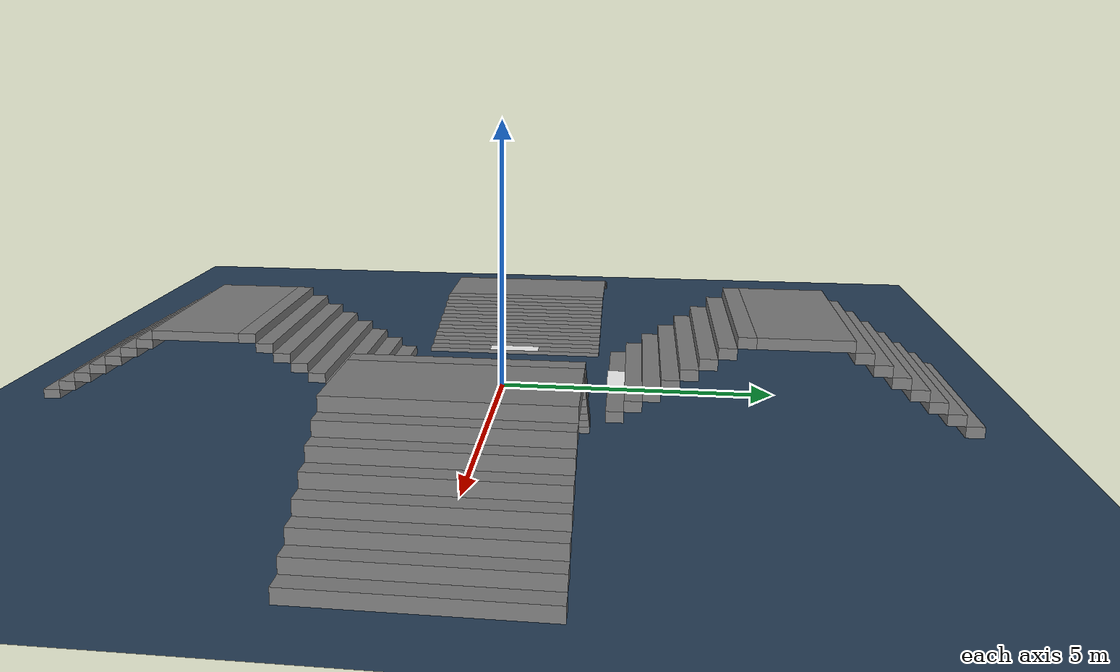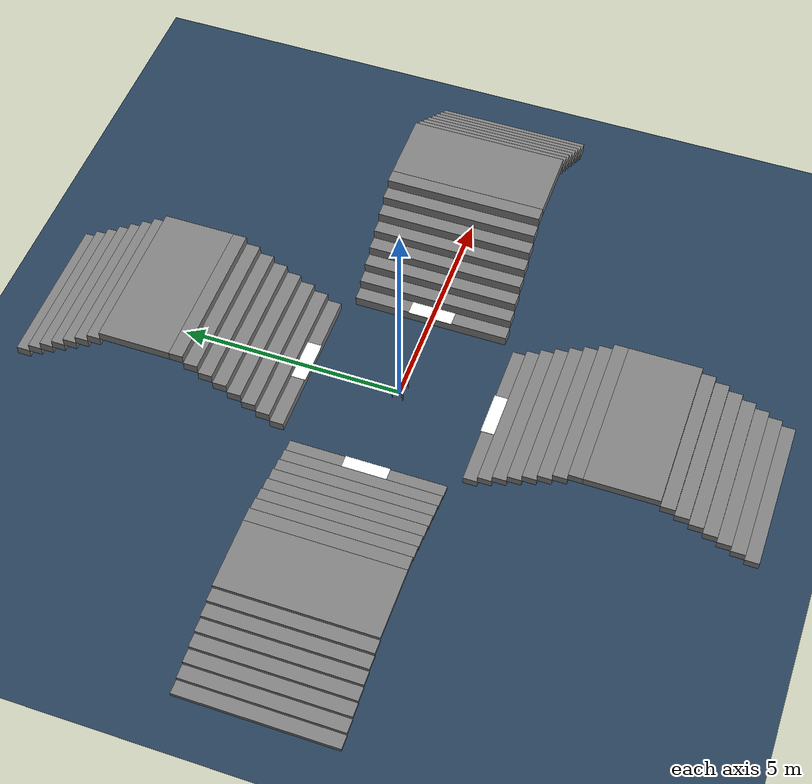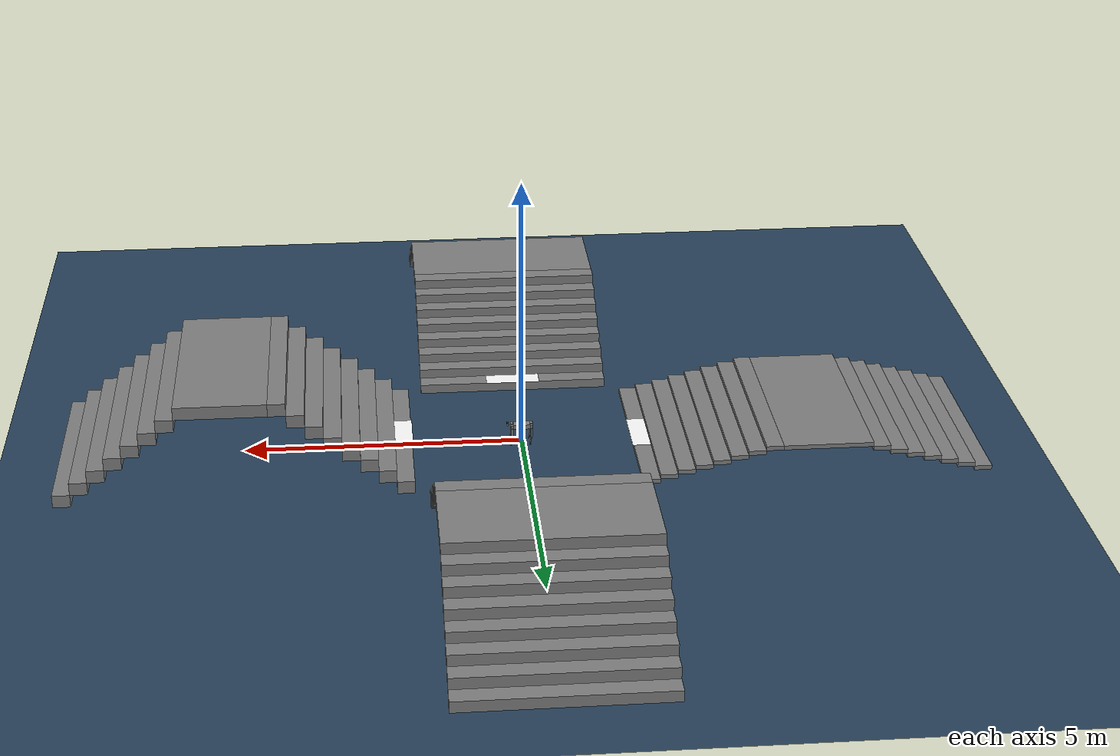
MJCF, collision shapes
<mujoco model="cross_stairs_1_4_7_10">
  <include file="dog_502.xml"/>
  <!-- Terrain: Cross Stairs Arch, Levels: 1,4,7,10. Cross Layout: Center Gap 2.0m. Arch step height: 0.0800 Arch step height: 0.2000 Arch step height: 0.2300 Arch step height: 0.1700 -->
  <statistic center="0 0 0.1" extent="0.8" />
  <visual>
    <headlight diffuse="0.6 0.6 0.6" ambient="0.3 0.3 0.3" specular="0 0 0" />
    <rgba haze="0.15 0.25 0.35 1" />
    <global azimuth="-130" elevation="-20" />
  </visual>
  <asset>
    <texture type="skybox" builtin="gradient" rgb1="0.3 0.5 0.7" rgb2="0 0 0" width="512" height="3072" />
    <texture type="2d" name="groundplane" builtin="checker" mark="edge" rgb1="0.2 0.3 0.4" rgb2="0.1 0.2 0.3" markrgb="0.8 0.8 0.8" width="300" height="300" />
    <material name="groundplane" texture="groundplane" texuniform="true" texrepeat="5 5" reflectance="0.0" />
    <texture name="tex_label_1" type="2d" file="./imgs/label_1.png" />
    <material name="mat_label_1" texture="tex_label_1" specular="0" shininess="0" emission="1" texrepeat="1 1" rgba="1 1 1 1" />
    <texture name="tex_label_7" type="2d" file="./imgs/label_7.png" />
    <material name="mat_label_7" texture="tex_label_7" specular="0" shininess="0" emission="1" texrepeat="1 1" rgba="1 1 1 1" />
    <texture name="tex_label_10" type="2d" file="./imgs/label_10.png" />
    <material name="mat_label_10" texture="tex_label_10" specular="0" shininess="0" emission="1" texrepeat="1 1" rgba="1 1 1 1" />
    <texture name="tex_label_4" type="2d" file="./imgs/label_4.png" />
    <material name="mat_label_4" texture="tex_label_4" specular="0" shininess="0" emission="1" texrepeat="1 1" rgba="1 1 1 1" />
  </asset>
  <worldbody>
    <light pos="0 0 1.5" dir="0 0 -1" directional="true" />
    <geom name="floor" size="0 0 0.05" type="plane" material="groundplane" />
    <geom pos="-2.155 1.8982025386783976e-17 0.04" type="box" size="0.155 1.75 0.04" quat="6.123233995736766e-17 0.0 0.0 1.0" />
    <geom pos="-2.465 5.694607616035192e-17 0.12" type="box" size="0.155 1.75 0.04" quat="6.123233995736766e-17 0.0 0.0 1.0" />
    <geom pos="-2.775 9.491012693391986e-17 0.2" type="box" size="0.155 1.75 0.04" quat="6.123233995736766e-17 0.0 0.0 1.0" />
    <geom pos="-3.085 1.328741777074878e-16 0.28" type="box" size="0.155 1.75 0.04" quat="6.123233995736766e-17 0.0 0.0 1.0" />
    <geom pos="-3.395 1.7083822848105578e-16 0.36000000000000004" type="box" size="0.155 1.75 0.04" quat="6.123233995736766e-17 0.0 0.0 1.0" />
    <geom pos="-3.705 2.0880227925462374e-16 0.44000000000000006" type="box" size="0.155 1.75 0.04" quat="6.123233995736766e-17 0.0 0.0 1.0" />
    <geom pos="-4.015000000000001 2.467663300281917e-16 0.52" type="box" size="0.155 1.75 0.04" quat="6.123233995736766e-17 0.0 0.0 1.0" />
    <geom pos="-4.325 2.8473038080175964e-16 0.6" type="box" size="0.155 1.75 0.04" quat="6.123233995736766e-17 0.0 0.0 1.0" />
    <geom pos="-5.28 4.016841501203319e-16 0.6" type="box" size="0.8 1.75 0.04" quat="6.123233995736766e-17 0.0 0.0 1.0" />
    <geom pos="-6.235 5.186379194389041e-16 0.52" type="box" size="0.155 1.75 0.04" quat="6.123233995736766e-17 0.0 0.0 1.0" />
    <geom pos="-6.545 5.56601970212472e-16 0.44" type="box" size="0.155 1.75 0.04" quat="6.123233995736766e-17 0.0 0.0 1.0" />
    <geom pos="-6.8549999999999995 5.945660209860399e-16 0.36" type="box" size="0.155 1.75 0.04" quat="6.123233995736766e-17 0.0 0.0 1.0" />
    <geom pos="-7.164999999999999 6.325300717596078e-16 0.27999999999999997" type="box" size="0.155 1.75 0.04" quat="6.123233995736766e-17 0.0 0.0 1.0" />
    <geom pos="-7.474999999999999 6.704941225331758e-16 0.19999999999999996" type="box" size="0.155 1.75 0.04" quat="6.123233995736766e-17 0.0 0.0 1.0" />
    <geom pos="-7.784999999999998 7.084581733067436e-16 0.11999999999999995" type="box" size="0.155 1.75 0.04" quat="6.123233995736766e-17 0.0 0.0 1.0" />
    <geom pos="-8.094999999999999 7.464222240803115e-16 0.03999999999999995" type="box" size="0.155 1.75 0.04" quat="6.123233995736766e-17 0.0 0.0 1.0" />
    <geom pos="-2.155 1.8982025386783976e-17 0.082" type="box" size="0.5 0.17532467532467533 0.0001" quat="0.7071067811865476 0.0 0.0 0.7071067811865475" contype="0" conaffinity="0" group="1" material="mat_label_1" rgba="1 1 1 1" />
    <geom pos="9.491012693391988e-18 2.155 0.1" type="box" size="0.155 1.75 0.1" quat="0.7071067811865476 0.0 0.0 0.7071067811865475" />
    <geom pos="2.847303808017596e-17 2.465 0.30000000000000004" type="box" size="0.155 1.75 0.1" quat="0.7071067811865476 0.0 0.0 0.7071067811865475" />
    <geom pos="4.745506346695993e-17 2.775 0.5" type="box" size="0.155 1.75 0.1" quat="0.7071067811865476 0.0 0.0 0.7071067811865475" />
    <geom pos="6.64370888537439e-17 3.085 0.7" type="box" size="0.155 1.75 0.1" quat="0.7071067811865476 0.0 0.0 0.7071067811865475" />
    <geom pos="8.541911424052789e-17 3.395 0.8999999999999999" type="box" size="0.155 1.75 0.1" quat="0.7071067811865476 0.0 0.0 0.7071067811865475" />
    <geom pos="1.0440113962731187e-16 3.705 1.0999999999999999" type="box" size="0.155 1.75 0.1" quat="0.7071067811865476 0.0 0.0 0.7071067811865475" />
    <geom pos="1.2338316501409585e-16 4.015000000000001 1.2999999999999998" type="box" size="0.155 1.75 0.1" quat="0.7071067811865476 0.0 0.0 0.7071067811865475" />
    <geom pos="1.4236519040087982e-16 4.325 1.4999999999999998" type="box" size="0.155 1.75 0.1" quat="0.7071067811865476 0.0 0.0 0.7071067811865475" />
    <geom pos="2.0084207506016595e-16 5.28 1.4999999999999998" type="box" size="0.8 1.75 0.1" quat="0.7071067811865476 0.0 0.0 0.7071067811865475" />
    <geom pos="2.5931895971945205e-16 6.235 1.2999999999999998" type="box" size="0.155 1.75 0.1" quat="0.7071067811865476 0.0 0.0 0.7071067811865475" />
    <geom pos="2.78300985106236e-16 6.545 1.0999999999999999" type="box" size="0.155 1.75 0.1" quat="0.7071067811865476 0.0 0.0 0.7071067811865475" />
    <geom pos="2.9728301049301994e-16 6.8549999999999995 0.8999999999999999" type="box" size="0.155 1.75 0.1" quat="0.7071067811865476 0.0 0.0 0.7071067811865475" />
    <geom pos="3.162650358798039e-16 7.164999999999999 0.7" type="box" size="0.155 1.75 0.1" quat="0.7071067811865476 0.0 0.0 0.7071067811865475" />
    <geom pos="3.352470612665879e-16 7.474999999999999 0.49999999999999994" type="box" size="0.155 1.75 0.1" quat="0.7071067811865476 0.0 0.0 0.7071067811865475" />
    <geom pos="3.542290866533718e-16 7.784999999999998 0.29999999999999993" type="box" size="0.155 1.75 0.1" quat="0.7071067811865476 0.0 0.0 0.7071067811865475" />
    <geom pos="3.7321111204015577e-16 8.094999999999999 0.09999999999999992" type="box" size="0.155 1.75 0.1" quat="0.7071067811865476 0.0 0.0 0.7071067811865475" />
    <geom pos="9.491012693391988e-18 2.155 0.202" type="box" size="0.5 0.17532467532467533 0.0001" quat="1.0 0.0 0.0 0.0" contype="0" conaffinity="0" group="1" material="mat_label_7" rgba="1 1 1 1" />
    <geom pos="2.155 0.0 0.115" type="box" size="0.155 1.75 0.115" quat="1.0 0.0 0.0 0.0" />
    <geom pos="2.465 0.0 0.34500000000000003" type="box" size="0.155 1.75 0.115" quat="1.0 0.0 0.0 0.0" />
    <geom pos="2.775 0.0 0.5750000000000001" type="box" size="0.155 1.75 0.115" quat="1.0 0.0 0.0 0.0" />
    <geom pos="3.085 0.0 0.805" type="box" size="0.155 1.75 0.115" quat="1.0 0.0 0.0 0.0" />
    <geom pos="3.395 0.0 1.0350000000000001" type="box" size="0.155 1.75 0.115" quat="1.0 0.0 0.0 0.0" />
    <geom pos="3.705 0.0 1.2650000000000001" type="box" size="0.155 1.75 0.115" quat="1.0 0.0 0.0 0.0" />
    <geom pos="4.015000000000001 0.0 1.495" type="box" size="0.155 1.75 0.115" quat="1.0 0.0 0.0 0.0" />
    <geom pos="4.325 0.0 1.725" type="box" size="0.155 1.75 0.115" quat="1.0 0.0 0.0 0.0" />
    <geom pos="5.28 0.0 1.725" type="box" size="0.8 1.75 0.115" quat="1.0 0.0 0.0 0.0" />
    <geom pos="6.235 0.0 1.495" type="box" size="0.155 1.75 0.115" quat="1.0 0.0 0.0 0.0" />
    <geom pos="6.545 0.0 1.2650000000000001" type="box" size="0.155 1.75 0.115" quat="1.0 0.0 0.0 0.0" />
    <geom pos="6.8549999999999995 0.0 1.0350000000000001" type="box" size="0.155 1.75 0.115" quat="1.0 0.0 0.0 0.0" />
    <geom pos="7.164999999999999 0.0 0.8050000000000002" type="box" size="0.155 1.75 0.115" quat="1.0 0.0 0.0 0.0" />
    <geom pos="7.474999999999999 0.0 0.5750000000000002" type="box" size="0.155 1.75 0.115" quat="1.0 0.0 0.0 0.0" />
    <geom pos="7.784999999999998 0.0 0.3450000000000002" type="box" size="0.155 1.75 0.115" quat="1.0 0.0 0.0 0.0" />
    <geom pos="8.094999999999999 0.0 0.11500000000000019" type="box" size="0.155 1.75 0.115" quat="1.0 0.0 0.0 0.0" />
    <geom pos="2.155 0.0 0.232" type="box" size="0.5 0.17532467532467533 0.0001" quat="0.7071067811865476 0.0 0.0 -0.7071067811865475" contype="0" conaffinity="0" group="1" material="mat_label_10" rgba="1 1 1 1" />
    <geom pos="9.491012693391988e-18 -2.155 0.08499999999999999" type="box" size="0.155 1.75 0.08499999999999999" quat="0.7071067811865476 0.0 0.0 -0.7071067811865475" />
    <geom pos="2.847303808017596e-17 -2.465 0.255" type="box" size="0.155 1.75 0.08499999999999999" quat="0.7071067811865476 0.0 0.0 -0.7071067811865475" />
    <geom pos="4.745506346695993e-17 -2.775 0.425" type="box" size="0.155 1.75 0.08499999999999999" quat="0.7071067811865476 0.0 0.0 -0.7071067811865475" />
    <geom pos="6.64370888537439e-17 -3.085 0.595" type="box" size="0.155 1.75 0.08499999999999999" quat="0.7071067811865476 0.0 0.0 -0.7071067811865475" />
    <geom pos="8.541911424052789e-17 -3.395 0.7649999999999999" type="box" size="0.155 1.75 0.08499999999999999" quat="0.7071067811865476 0.0 0.0 -0.7071067811865475" />
    <geom pos="1.0440113962731187e-16 -3.705 0.9349999999999998" type="box" size="0.155 1.75 0.08499999999999999" quat="0.7071067811865476 0.0 0.0 -0.7071067811865475" />
    <geom pos="1.2338316501409585e-16 -4.015000000000001 1.1049999999999998" type="box" size="0.155 1.75 0.08499999999999999" quat="0.7071067811865476 0.0 0.0 -0.7071067811865475" />
    <geom pos="1.4236519040087982e-16 -4.325 1.2749999999999997" type="box" size="0.155 1.75 0.08499999999999999" quat="0.7071067811865476 0.0 0.0 -0.7071067811865475" />
    <geom pos="2.0084207506016595e-16 -5.28 1.2749999999999997" type="box" size="0.8 1.75 0.08499999999999999" quat="0.7071067811865476 0.0 0.0 -0.7071067811865475" />
    <geom pos="2.5931895971945205e-16 -6.235 1.1049999999999998" type="box" size="0.155 1.75 0.08499999999999999" quat="0.7071067811865476 0.0 0.0 -0.7071067811865475" />
    <geom pos="2.78300985106236e-16 -6.545 0.9349999999999998" type="box" size="0.155 1.75 0.08499999999999999" quat="0.7071067811865476 0.0 0.0 -0.7071067811865475" />
    <geom pos="2.9728301049301994e-16 -6.8549999999999995 0.7649999999999999" type="box" size="0.155 1.75 0.08499999999999999" quat="0.7071067811865476 0.0 0.0 -0.7071067811865475" />
    <geom pos="3.162650358798039e-16 -7.164999999999999 0.595" type="box" size="0.155 1.75 0.08499999999999999" quat="0.7071067811865476 0.0 0.0 -0.7071067811865475" />
    <geom pos="3.352470612665879e-16 -7.474999999999999 0.425" type="box" size="0.155 1.75 0.08499999999999999" quat="0.7071067811865476 0.0 0.0 -0.7071067811865475" />
    <geom pos="3.542290866533718e-16 -7.784999999999998 0.255" type="box" size="0.155 1.75 0.08499999999999999" quat="0.7071067811865476 0.0 0.0 -0.7071067811865475" />
    <geom pos="3.7321111204015577e-16 -8.094999999999999 0.08500000000000002" type="box" size="0.155 1.75 0.08499999999999999" quat="0.7071067811865476 0.0 0.0 -0.7071067811865475" />
    <geom pos="9.491012693391988e-18 -2.155 0.172" type="box" size="0.5 0.17532467532467533 0.0001" quat="6.123233995736766e-17 0.0 0.0 -1.0" contype="0" conaffinity="0" group="1" material="mat_label_4" rgba="1 1 1 1" />
  </worldbody>
</mujoco>

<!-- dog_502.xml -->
<mujoco model="dog_502_description">
  <compiler angle="radian" meshdir="../../../dog_502_description/meshes"/>

  <default>
    <joint damping="0.01" armature="0.01" frictionloss="0.02"/>
    <geom condim="3" friction="0.8 0.02 0.01"/>
    <default class="visual">
      <geom type="mesh" contype="0" conaffinity="0" group="2"/>
    </default>
  </default>

  <asset>
    <material name="light_grey" rgba="0.75294 0.75294 0.75294 1"/>
    <material name="black" rgba="0.1 0.1 0.1 1"/>
    <material name="red" rgba="1.0 0.0 0.0 1"/>

    <mesh name="base_link_mesh" file="base_link.STL"/>
    <mesh name="FL_hip_mesh" file="FL_hip.STL"/>
    <mesh name="FR_hip_mesh" file="FR_hip.STL"/>
    <mesh name="RL_hip_mesh" file="RL_hip.STL"/>
    <mesh name="RR_hip_mesh" file="RR_hip.STL"/>
    <mesh name="FL_thigh_mesh" file="FL_thigh.STL"/>
    <mesh name="FR_thigh_mesh" file="FR_thigh.STL"/>
    <mesh name="RL_thigh_mesh" file="RL_thigh.STL"/>
    <mesh name="RR_thigh_mesh" file="RR_thigh.STL"/>
    <mesh name="FL_calf_mesh" file="FL_calf.STL"/>
    <mesh name="FR_calf_mesh" file="FR_calf.STL"/>
    <mesh name="RL_calf_mesh" file="RL_calf.STL"/>
    <mesh name="RR_calf_mesh" file="RR_calf.STL"/>
  </asset>

  <worldbody>
    <body name="base" pos="0 0 0.31">
      <inertial pos="0.000037 0.001297 -0.002295" mass="4.142449" diaginertia="0.013374 0.031506 0.039388"/>
      <freejoint name="root"/>
      <geom mesh="base_link_mesh" material="light_grey" class="visual"/>
      <geom name="base_collision" type="box" size="0.15 0.075 0.04"/>

      <body name="camera" pos="0.255 0 0.04185" quat="0.984811 0 0.173672 0">
        <geom name="camera_visual" type="box" size="0.0125 0.06 0.0145" material="black" contype="0" conaffinity="0" group="2"/>
      </body>

      <body name="FL_hip" pos="0.1767 0.05 0">
        <inertial pos="-0.00457081 -0.00969999 0.0002578" mass="0.50149755" diaginertia="0.00011158 0.00021376 0.00016301"/>
        <joint name="FL_hip_joint" axis="1 0 0" range="-0.837758 0.837758" actuatorfrcrange="-17 17"/>
        <geom mesh="FL_hip_mesh" material="light_grey" class="visual"/>
        <geom name="FL_hip_collision" type="box" size="0.025 0.04 0.03"/>
        <body name="FL_thigh" pos="0 0.0684 0">
          <inertial pos="-0.00194747 -0.02547458 -0.01388663" mass="0.64867804" diaginertia="0.00138293 0.00137329 0.00032193"/>
          <joint name="FL_thigh_joint" axis="0 1 0" range="-1.5708 3.49066" actuatorfrcrange="-17 17"/>
          <geom mesh="FL_thigh_mesh" material="light_grey" class="visual"/>
          <geom name="FL_thigh_collision" type="box" pos="0 0 -0.09" quat="0.707107 0 0.707107 0" size="0.09 0.015 0.0175"/>
          <body name="FL_calf" pos="0 0 -0.18">
            <inertial pos="0.01310003 -0.00009903 -0.09935467" mass="0.06024443" diaginertia="0.0003599 0.00036988 0.00001166"/>
            <joint name="FL_calf_joint" axis="0 1 0" range="-2.72271 -0.837758" actuatorfrcrange="-17 17"/>
            <geom mesh="FL_calf_mesh" material="light_grey" class="visual"/>
            <geom name="FL_calf_collision_0" type="box" pos="0.013 0 -0.053" quat="0.988392 0 -0.151909 0" size="0.00825 0.0075 0.05106"/>
            <geom name="FL_calf_collision_1" type="box" pos="0.0285 0 -0.119" quat="0.997889 0 -0.064954 0" size="0.009 0.0075 0.03"/>
            <geom name="FL_calf_collision_2" type="box" pos="0.02021 0 -0.15878" quat="0.968912 0 0.247404 0" size="0.0125 0.0075 0.02"/>
            <geom name="FL_calf_collision_3" type="box" pos="0.03 0 -0.16" quat="0.998750 0 0.049979 0" size="0.01 0.0075 0.015"/>
            <body name="FL_foot" pos="0 0 -0.18">
              <inertial pos="0 0 0" mass="0.04" diaginertia="0.0000096 0.0000096 0.0000096"/>
              <geom name="FL_foot_visual" type="sphere" size="0.01" material="red" contype="0" conaffinity="0" group="2"/>
              <geom name="FL_foot_collision" type="sphere" pos="0.015 0 0" size="0.0225"/>
            </body>
          </body>
        </body>
      </body>

      <body name="FR_hip" pos="0.1767 -0.05 0">
        <inertial pos="-0.00444412 0.00969999 0.00054368" mass="0.50149755" diaginertia="0.00011122 0.00021421 0.00016383"/>
        <joint name="FR_hip_joint" axis="1 0 0" range="-0.837758 0.837758" actuatorfrcrange="-17 17"/>
        <geom mesh="FR_hip_mesh" material="light_grey" class="visual"/>
        <geom name="FR_hip_collision" type="box" size="0.025 0.04 0.03"/>
        <body name="FR_thigh" pos="0 -0.0684 0">
          <inertial pos="-0.00096707 0.02548196 -0.01388686" mass="0.64867934" diaginertia="0.00138275 0.00137516 0.00032358"/>
          <joint name="FR_thigh_joint" axis="0 1 0" range="-1.5708 3.49066" actuatorfrcrange="-17 17"/>
          <geom mesh="FR_thigh_mesh" material="light_grey" class="visual"/>
          <geom name="FR_thigh_collision" type="box" pos="0 0 -0.09" quat="0.707107 0 0.707107 0" size="0.09 0.015 0.0175"/>
          <body name="FR_calf" pos="0 0 -0.18">
            <inertial pos="0.01310003 0.00010097 -0.09935467" mass="0.06024443" diaginertia="0.0003599 0.00036988 0.00001166"/>
            <joint name="FR_calf_joint" axis="0 1 0" range="-2.72271 -0.837758" actuatorfrcrange="-17 17"/>
            <geom mesh="FR_calf_mesh" material="light_grey" class="visual"/>
            <geom name="FR_calf_collision_0" type="box" pos="0.013 0 -0.053" quat="0.988392 0 -0.151909 0" size="0.00825 0.0075 0.05106"/>
            <geom name="FR_calf_collision_1" type="box" pos="0.0285 0 -0.119" quat="0.997889 0 -0.064954 0" size="0.009 0.0075 0.03"/>
            <geom name="FR_calf_collision_2" type="box" pos="0.02021 0 -0.15878" quat="0.968912 0 0.247404 0" size="0.0125 0.0075 0.02"/>
            <geom name="FR_calf_collision_3" type="box" pos="0.03 0 -0.16" quat="0.998750 0 0.049979 0" size="0.01 0.0075 0.015"/>
            <body name="FR_foot" pos="0 0 -0.18">
              <inertial pos="0 0 0" mass="0.04" diaginertia="0.0000096 0.0000096 0.0000096"/>
              <geom name="FR_foot_visual" type="sphere" size="0.01" material="red" contype="0" conaffinity="0" group="2"/>
              <geom name="FR_foot_collision" type="sphere" pos="0.015 0 0" size="0.0225"/>
            </body>
          </body>
        </body>
      </body>

      <body name="RL_hip" pos="-0.1767 0.05 0">
        <inertial pos="0.00329874 -0.00969999 0.00094432" mass="0.50149755" diaginertia="0.00011271 0.00021836 0.00016649"/>
        <joint name="RL_hip_joint" axis="1 0 0" range="-0.837758 0.837758" actuatorfrcrange="-17 17"/>
        <geom mesh="RL_hip_mesh" material="light_grey" class="visual"/>
        <geom name="RL_hip_collision" type="box" size="0.025 0.04 0.03"/>
        <body name="RL_thigh" pos="0 0.0684 0">
          <inertial pos="-0.00120536 -0.02547458 -0.01523822" mass="0.64867804" diaginertia="0.00135600 0.00134928 0.00032485"/>
          <joint name="RL_thigh_joint" axis="0 1 0" range="-1.5708 3.49066" actuatorfrcrange="-17 17"/>
          <geom mesh="RL_thigh_mesh" material="light_grey" class="visual"/>
          <geom name="RL_thigh_collision" type="box" pos="0 0 -0.09" quat="0.707107 0 0.707107 0" size="0.09 0.015 0.0175"/>
          <body name="RL_calf" pos="0 0 -0.18">
            <inertial pos="0.01310003 -0.00009903 -0.09935467" mass="0.06024443" diaginertia="0.0003599 0.00036988 0.00001166"/>
            <joint name="RL_calf_joint" axis="0 1 0" range="-2.72271 -0.837758" actuatorfrcrange="-17 17"/>
            <geom mesh="RL_calf_mesh" material="light_grey" class="visual"/>
            <geom name="RL_calf_collision_0" type="box" pos="0.013 0 -0.053" quat="0.988392 0 -0.151909 0" size="0.00825 0.0075 0.05106"/>
            <geom name="RL_calf_collision_1" type="box" pos="0.0285 0 -0.119" quat="0.997889 0 -0.064954 0" size="0.009 0.0075 0.03"/>
            <geom name="RL_calf_collision_2" type="box" pos="0.02021 0 -0.15878" quat="0.968912 0 0.247404 0" size="0.0125 0.0075 0.02"/>
            <geom name="RL_calf_collision_3" type="box" pos="0.03 0 -0.16" quat="0.998750 0 0.049979 0" size="0.01 0.0075 0.015"/>
            <body name="RL_foot" pos="0 0 -0.18">
              <inertial pos="0 0 0" mass="0.04" diaginertia="0.0000096 0.0000096 0.0000096"/>
              <geom name="RL_foot_visual" type="sphere" size="0.01" material="red" contype="0" conaffinity="0" group="2"/>
              <geom name="RL_foot_collision" type="sphere" pos="0.015 0 0" size="0.0225"/>
            </body>
          </body>
        </body>
      </body>

      <body name="RR_hip" pos="-0.1767 -0.05 0">
        <inertial pos="0.00444412 0.00969999 -0.00054368" mass="0.50149755" diaginertia="0.00011122 0.00021421 0.00016383"/>
        <joint name="RR_hip_joint" axis="1 0 0" range="-0.837758 0.837758" actuatorfrcrange="-17 17"/>
        <geom mesh="RR_hip_mesh" material="light_grey" class="visual"/>
        <geom name="RR_hip_collision" type="box" size="0.025 0.04 0.03"/>
        <body name="RR_thigh" pos="0 -0.0684 0">
          <inertial pos="-0.00212669 0.02547451 -0.01490311" mass="0.64867934" diaginertia="0.00136777 0.00135386 0.00031766"/>
          <joint name="RR_thigh_joint" axis="0 1 0" range="-1.5708 3.49066" actuatorfrcrange="-17 17"/>
          <geom mesh="RR_thigh_mesh" material="light_grey" class="visual"/>
          <geom name="RR_thigh_collision" type="box" pos="0 0 -0.09" quat="0.707107 0 0.707107 0" size="0.09 0.015 0.0175"/>
          <body name="RR_calf" pos="0 0 -0.18">
            <inertial pos="0.01310003 0.00010097 -0.09935467" mass="0.06024443" diaginertia="0.0003599 0.00036988 0.00001166"/>
            <joint name="RR_calf_joint" axis="0 1 0" range="-2.72271 -0.837758" actuatorfrcrange="-17 17"/>
            <geom mesh="RR_calf_mesh" material="light_grey" class="visual"/>
            <geom name="RR_calf_collision_0" type="box" pos="0.013 0 -0.053" quat="0.988392 0 -0.151909 0" size="0.00825 0.0075 0.05106"/>
            <geom name="RR_calf_collision_1" type="box" pos="0.0285 0 -0.119" quat="0.997889 0 -0.064954 0" size="0.009 0.0075 0.03"/>
            <geom name="RR_calf_collision_2" type="box" pos="0.02021 0 -0.15878" quat="0.968912 0 0.247404 0" size="0.0125 0.0075 0.02"/>
            <geom name="RR_calf_collision_3" type="box" pos="0.03 0 -0.16" quat="0.998750 0 0.049979 0" size="0.01 0.0075 0.015"/>
            <body name="RR_foot" pos="0 0 -0.18">
              <inertial pos="0 0 0" mass="0.04" diaginertia="0.0000096 0.0000096 0.0000096"/>
              <geom name="RR_foot_visual" type="sphere" size="0.01" material="red" contype="0" conaffinity="0" group="2"/>
              <geom name="RR_foot_collision" type="sphere" pos="0.015 0 0" size="0.0225"/>
            </body>
          </body>
        </body>
      </body>
    </body>
  </worldbody>

  <actuator>
    <motor name="FL_hip" joint="FL_hip_joint" ctrllimited="true" ctrlrange="-17 17"/>
    <motor name="FL_thigh" joint="FL_thigh_joint" ctrllimited="true" ctrlrange="-17 17"/>
    <motor name="FL_calf" joint="FL_calf_joint" ctrllimited="true" ctrlrange="-17 17"/>
    <motor name="FR_hip" joint="FR_hip_joint" ctrllimited="true" ctrlrange="-17 17"/>
    <motor name="FR_thigh" joint="FR_thigh_joint" ctrllimited="true" ctrlrange="-17 17"/>
    <motor name="FR_calf" joint="FR_calf_joint" ctrllimited="true" ctrlrange="-17 17"/>
    <motor name="RL_hip" joint="RL_hip_joint" ctrllimited="true" ctrlrange="-17 17"/>
    <motor name="RL_thigh" joint="RL_thigh_joint" ctrllimited="true" ctrlrange="-17 17"/>
    <motor name="RL_calf" joint="RL_calf_joint" ctrllimited="true" ctrlrange="-17 17"/>
    <motor name="RR_hip" joint="RR_hip_joint" ctrllimited="true" ctrlrange="-17 17"/>
    <motor name="RR_thigh" joint="RR_thigh_joint" ctrllimited="true" ctrlrange="-17 17"/>
    <motor name="RR_calf" joint="RR_calf_joint" ctrllimited="true" ctrlrange="-17 17"/>
  </actuator>
</mujoco>
